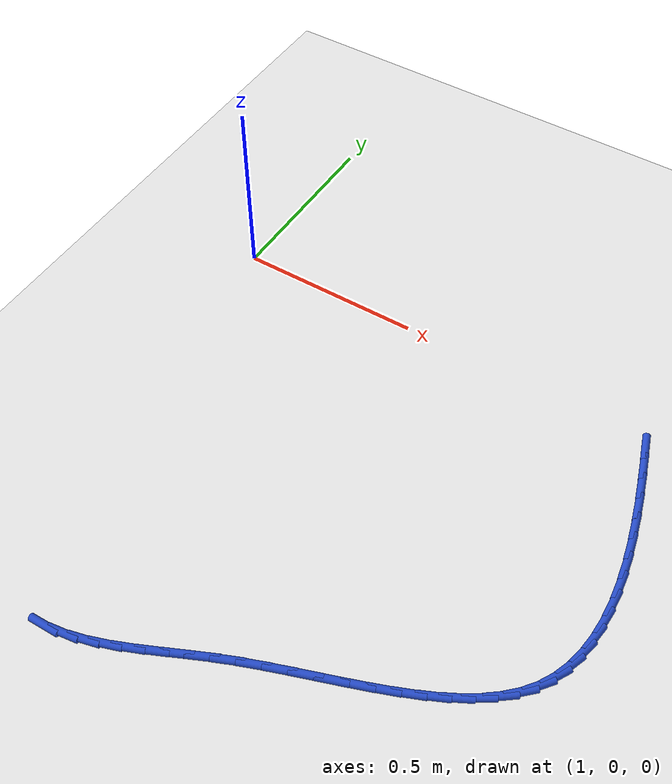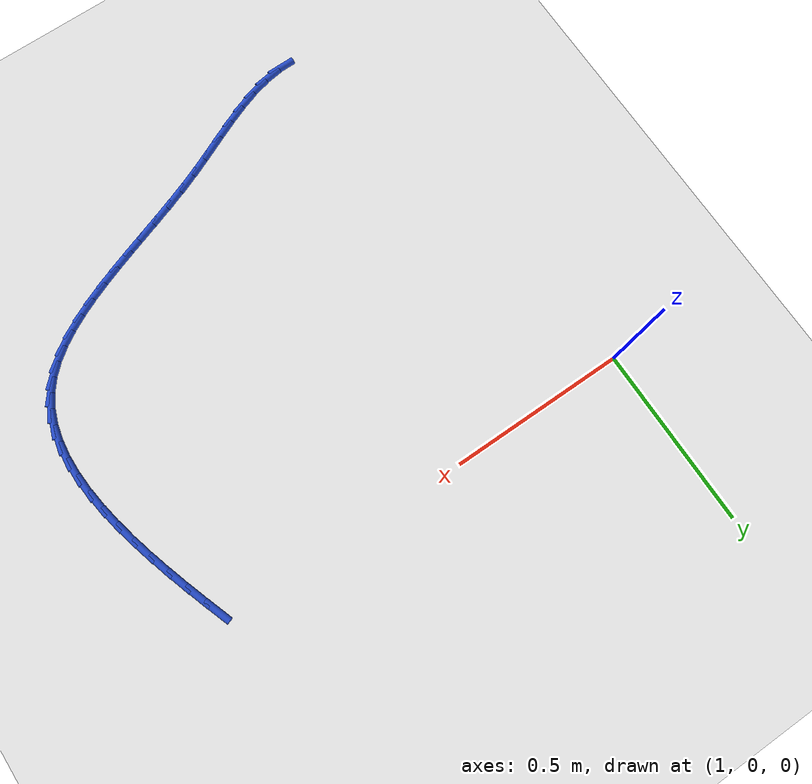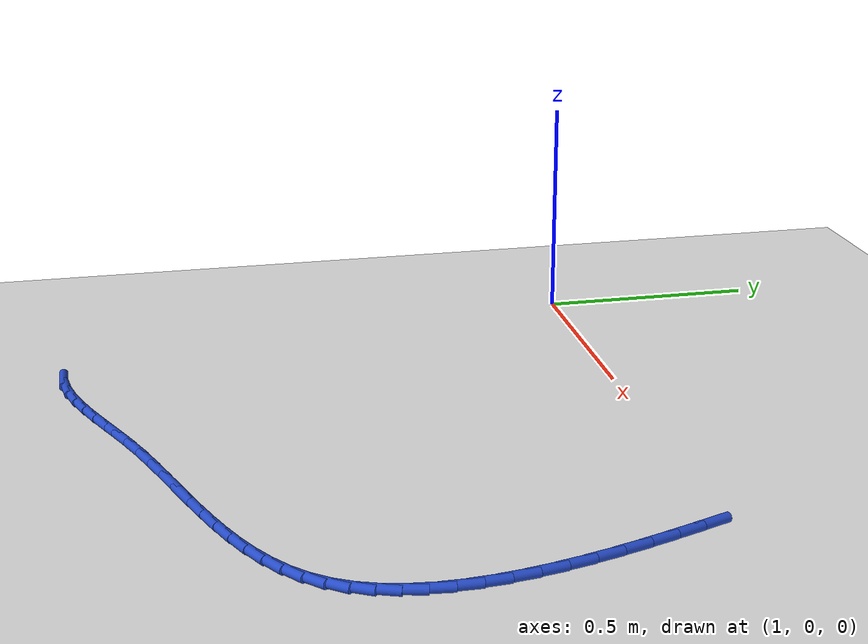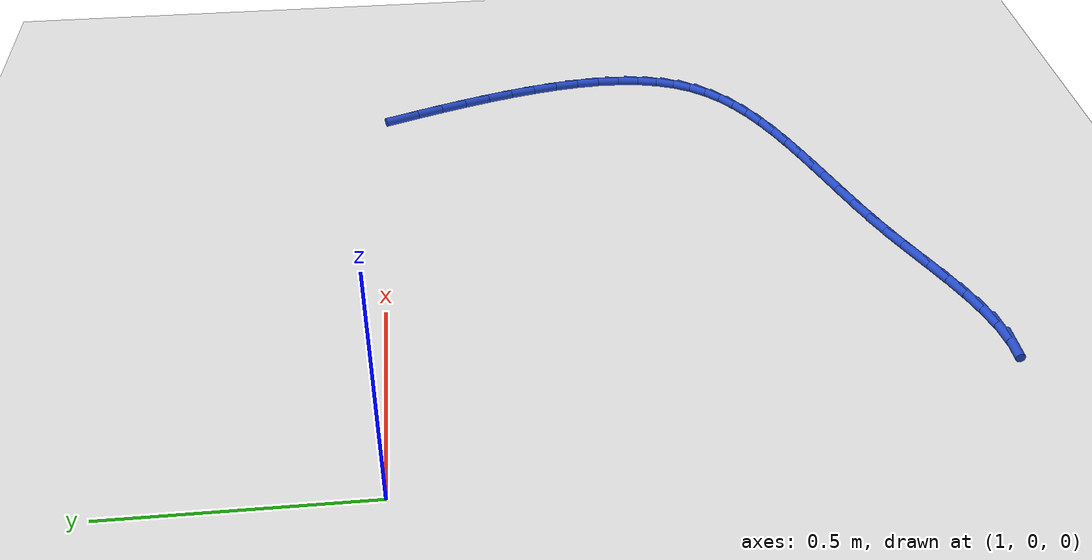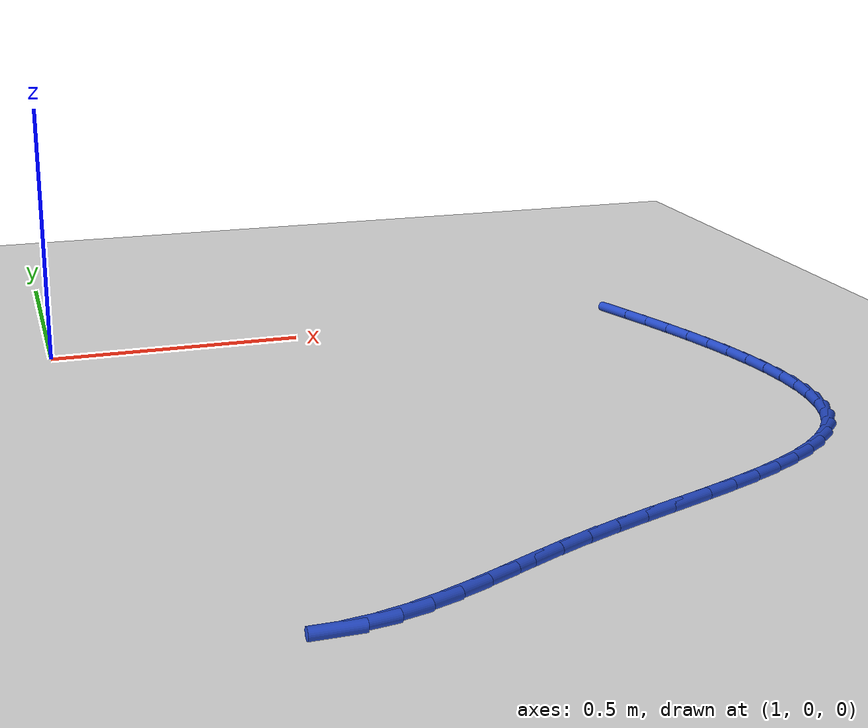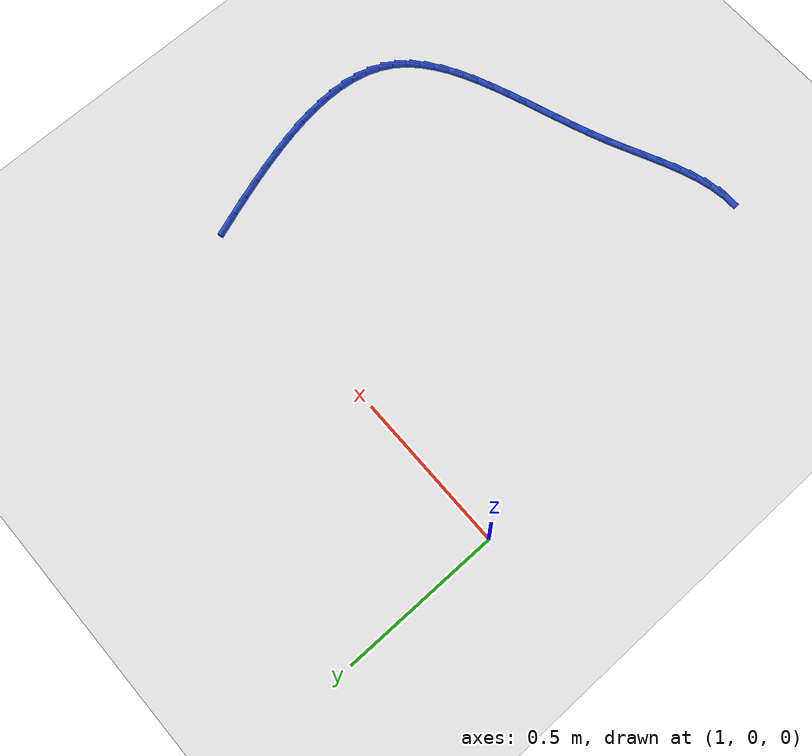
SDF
<sdf version="1.6">
 <world name="default">
  <model name="ground_plane">
   <static>1</static>
   <link name="link">
    <collision name="collision">
     <geometry><plane><normal>0 0 1</normal><size>100 100</size></plane></geometry>
     <surface><friction><ode><mu>100</mu><mu2>50</mu2></ode></friction></surface>
    </collision>
    <visual name="visual">
     <cast_shadows>0</cast_shadows>
     <geometry><plane><normal>0 0 1</normal><size>100 100</size></plane></geometry>
     <material>
      <script><uri>file://media/materials/scripts/gazebo.material</uri><name>Gazebo/WhiteGlow</name></script>
     </material>
    </visual>
   </link>
  </model>
  <model name="line">
   <link name="link_69">
    <pose>2.2056342795705226 -0.03901441204848701 0.01 0 1.57 -1.2252289311089013</pose>
    <collision name="collision">
     <geometry><cylinder><radius>0.01</radius><length>0.08</length></cylinder></geometry>
    </collision>
    <visual name="visual">
     <material>
      <script><name>Gazebo/Blue</name><uri>file://media/materials/scripts/gazebo.material</uri></script>
     </material>
     <geometry><cylinder><radius>0.01</radius><length>0.08</length></cylinder></geometry>
    </visual>
   </link>
   <link name="link_70">
    <pose>2.2262360307513274 -0.09623937714185546 0.01 0 1.57 -1.2387384780958342</pose>
    <collision name="collision">
     <geometry><cylinder><radius>0.01</radius><length>0.08</length></cylinder></geometry>
    </collision>
    <visual name="visual">
     <material>
      <script><name>Gazebo/Blue</name><uri>file://media/materials/scripts/gazebo.material</uri></script>
     </material>
     <geometry><cylinder><radius>0.01</radius><length>0.08</length></cylinder></geometry>
    </visual>
   </link>
   <link name="link_71">
    <pose>2.2460134147734023 -0.1535940920825142 0.01 0 1.57 -1.2570489514854983</pose>
    <collision name="collision">
     <geometry><cylinder><radius>0.01</radius><length>0.08</length></cylinder></geometry>
    </collision>
    <visual name="visual">
     <material>
      <script><name>Gazebo/Blue</name><uri>file://media/materials/scripts/gazebo.material</uri></script>
     </material>
     <geometry><cylinder><radius>0.01</radius><length>0.08</length></cylinder></geometry>
    </visual>
   </link>
   <link name="link_72">
    <pose>2.2645761572507275 -0.21080450859317787 0.01 0 1.57 -1.2806290459082628</pose>
    <collision name="collision">
     <geometry><cylinder><radius>0.01</radius><length>0.08</length></cylinder></geometry>
    </collision>
    <visual name="visual">
     <material>
      <script><name>Gazebo/Blue</name><uri>file://media/materials/scripts/gazebo.material</uri></script>
     </material>
     <geometry><cylinder><radius>0.01</radius><length>0.08</length></cylinder></geometry>
    </visual>
   </link>
   <link name="link_73">
    <pose>2.2815339837972854 -0.2675965783965617 0.01 0 1.57 -1.3101486203888764</pose>
    <collision name="collision">
     <geometry><cylinder><radius>0.01</radius><length>0.08</length></cylinder></geometry>
    </collision>
    <visual name="visual">
     <material>
      <script><name>Gazebo/Blue</name><uri>file://media/materials/scripts/gazebo.material</uri></script>
     </material>
     <geometry><cylinder><radius>0.01</radius><length>0.08</length></cylinder></geometry>
    </visual>
   </link>
   <link name="link_74">
    <pose>2.296496620027056 -0.3236962532153782 0.01 0 1.57 -1.3465111334952728</pose>
    <collision name="collision">
     <geometry><cylinder><radius>0.01</radius><length>0.08</length></cylinder></geometry>
    </collision>
    <visual name="visual">
     <material>
      <script><name>Gazebo/Blue</name><uri>file://media/materials/scripts/gazebo.material</uri></script>
     </material>
     <geometry><cylinder><radius>0.01</radius><length>0.08</length></cylinder></geometry>
    </visual>
   </link>
   <link name="link_75">
    <pose>2.309073791554022 -0.3788294847723427 0.01 0 1.57 -1.390893389303924</pose>
    <collision name="collision">
     <geometry><cylinder><radius>0.01</radius><length>0.08</length></cylinder></geometry>
    </collision>
    <visual name="visual">
     <material>
      <script><name>Gazebo/Blue</name><uri>file://media/materials/scripts/gazebo.material</uri></script>
     </material>
     <geometry><cylinder><radius>0.01</radius><length>0.08</length></cylinder></geometry>
    </visual>
   </link>
   <link name="link_76">
    <pose>2.3188752239921633 -0.43272222479016925 0.01 0 1.57 -1.4447847303375987</pose>
    <collision name="collision">
     <geometry><cylinder><radius>0.01</radius><length>0.08</length></cylinder></geometry>
    </collision>
    <visual name="visual">
     <material>
      <script><name>Gazebo/Blue</name><uri>file://media/materials/scripts/gazebo.material</uri></script>
     </material>
     <geometry><cylinder><radius>0.01</radius><length>0.08</length></cylinder></geometry>
    </visual>
   </link>
   <link name="link_77">
    <pose>2.3255106429554613 -0.48510042499157235 0.01 0 1.57 -1.5100064303308782</pose>
    <collision name="collision">
     <geometry><cylinder><radius>0.01</radius><length>0.08</length></cylinder></geometry>
    </collision>
    <visual name="visual">
     <material>
      <script><name>Gazebo/Blue</name><uri>file://media/materials/scripts/gazebo.material</uri></script>
     </material>
     <geometry><cylinder><radius>0.01</radius><length>0.08</length></cylinder></geometry>
    </visual>
   </link>
   <link name="link_78">
    <pose>2.328589774057898 -0.535690037099267 0.01 0 1.57 1.5529229942698222</pose>
    <collision name="collision">
     <geometry><cylinder><radius>0.01</radius><length>0.08</length></cylinder></geometry>
    </collision>
    <visual name="visual">
     <material>
      <script><name>Gazebo/Blue</name><uri>file://media/materials/scripts/gazebo.material</uri></script>
     </material>
     <geometry><cylinder><radius>0.01</radius><length>0.08</length></cylinder></geometry>
    </visual>
   </link>
   <link name="link_79">
    <pose>2.3277223429134533 -0.584217012835966 0.01 0 1.57 1.458599328019771</pose>
    <collision name="collision">
     <geometry><cylinder><radius>0.01</radius><length>0.08</length></cylinder></geometry>
    </collision>
    <visual name="visual">
     <material>
      <script><name>Gazebo/Blue</name><uri>file://media/materials/scripts/gazebo.material</uri></script>
     </material>
     <geometry><cylinder><radius>0.01</radius><length>0.08</length></cylinder></geometry>
    </visual>
   </link>
   <link name="link_80">
    <pose>2.3225180751361094 -0.6304073039243845 0.01 0 1.57 1.346732123095638</pose>
    <collision name="collision">
     <geometry><cylinder><radius>0.01</radius><length>0.08</length></cylinder></geometry>
    </collision>
    <visual name="visual">
     <material>
      <script><name>Gazebo/Blue</name><uri>file://media/materials/scripts/gazebo.material</uri></script>
     </material>
     <geometry><cylinder><radius>0.01</radius><length>0.08</length></cylinder></geometry>
    </visual>
   </link>
   <link name="link_81">
    <pose>2.3125866963398467 -0.6739868620872365 0.01 0 1.57 1.2165958881692642</pose>
    <collision name="collision">
     <geometry><cylinder><radius>0.01</radius><length>0.08</length></cylinder></geometry>
    </collision>
    <visual name="visual">
     <material>
      <script><name>Gazebo/Blue</name><uri>file://media/materials/scripts/gazebo.material</uri></script>
     </material>
     <geometry><cylinder><radius>0.01</radius><length>0.08</length></cylinder></geometry>
    </visual>
   </link>
   <link name="link_82">
    <pose>2.2975379321386478 -0.7146816390472374 0.01 0 1.57 1.069761949665185</pose>
    <collision name="collision">
     <geometry><cylinder><radius>0.01</radius><length>0.08</length></cylinder></geometry>
    </collision>
    <visual name="visual">
     <material>
      <script><name>Gazebo/Blue</name><uri>file://media/materials/scripts/gazebo.material</uri></script>
     </material>
     <geometry><cylinder><radius>0.01</radius><length>0.08</length></cylinder></geometry>
    </visual>
   </link>
   <link name="link_83">
    <pose>2.2769815081464917 -0.7522175865270997 0.01 0 1.57 0.9136133449423521</pose>
    <collision name="collision">
     <geometry><cylinder><radius>0.01</radius><length>0.08</length></cylinder></geometry>
    </collision>
    <visual name="visual">
     <material>
      <script><name>Gazebo/Blue</name><uri>file://media/materials/scripts/gazebo.material</uri></script>
     </material>
     <geometry><cylinder><radius>0.01</radius><length>0.08</length></cylinder></geometry>
    </visual>
   </link>
   <link name="link_84">
    <pose>2.2506192923932784 -0.7863831956056533 0.01 0 1.57 0.7719826336899985</pose>
    <collision name="collision">
     <geometry><cylinder><radius>0.01</radius><length>0.08</length></cylinder></geometry>
    </collision>
    <visual name="visual">
     <material>
      <script><name>Gazebo/Blue</name><uri>file://media/materials/scripts/gazebo.material</uri></script>
     </material>
     <geometry><cylinder><radius>0.01</radius><length>0.08</length></cylinder></geometry>
    </visual>
   </link>
   <link name="link_85">
    <pose>2.218772162771013 -0.8173870947959302 0.01 0 1.57 0.6548370400430105</pose>
    <collision name="collision">
     <geometry><cylinder><radius>0.01</radius><length>0.08</length></cylinder></geometry>
    </collision>
    <visual name="visual">
     <material>
      <script><name>Gazebo/Blue</name><uri>file://media/materials/scripts/gazebo.material</uri></script>
     </material>
     <geometry><cylinder><radius>0.01</radius><length>0.08</length></cylinder></geometry>
    </visual>
   </link>
   <link name="link_86">
    <pose>2.1820159156663648 -0.8456109321520637 0.01 0 1.57 0.5611412540439787</pose>
    <collision name="collision">
     <geometry><cylinder><radius>0.01</radius><length>0.08</length></cylinder></geometry>
    </collision>
    <visual name="visual">
     <material>
      <script><name>Gazebo/Blue</name><uri>file://media/materials/scripts/gazebo.material</uri></script>
     </material>
     <geometry><cylinder><radius>0.01</radius><length>0.08</length></cylinder></geometry>
    </visual>
   </link>
   <link name="link_87">
    <pose>2.140927139059118 -0.8714368930021816 0.01 0 1.57 0.48809937263132497</pose>
    <collision name="collision">
     <geometry><cylinder><radius>0.01</radius><length>0.08</length></cylinder></geometry>
    </collision>
    <visual name="visual">
     <material>
      <script><name>Gazebo/Blue</name><uri>file://media/materials/scripts/gazebo.material</uri></script>
     </material>
     <geometry><cylinder><radius>0.01</radius><length>0.08</length></cylinder></geometry>
    </visual>
   </link>
   <link name="link_88">
    <pose>2.096082420929059 -0.8952471626744094 0.01 0 1.57 0.43261044921629677</pose>
    <collision name="collision">
     <geometry><cylinder><radius>0.01</radius><length>0.08</length></cylinder></geometry>
    </collision>
    <visual name="visual">
     <material>
      <script><name>Gazebo/Blue</name><uri>file://media/materials/scripts/gazebo.material</uri></script>
     </material>
     <geometry><cylinder><radius>0.01</radius><length>0.08</length></cylinder></geometry>
    </visual>
   </link>
   <link name="link_89">
    <pose>2.0480583492559723 -0.9174239264968744 0.01 0 1.57 0.3919421929548874</pose>
    <collision name="collision">
     <geometry><cylinder><radius>0.01</radius><length>0.08</length></cylinder></geometry>
    </collision>
    <visual name="visual">
     <material>
      <script><name>Gazebo/Blue</name><uri>file://media/materials/scripts/gazebo.material</uri></script>
     </material>
     <geometry><cylinder><radius>0.01</radius><length>0.08</length></cylinder></geometry>
    </visual>
   </link>
   <link name="link_90">
    <pose>1.9974315120196426 -0.9383493697977039 0.01 0 1.57 0.36394606320995</pose>
    <collision name="collision">
     <geometry><cylinder><radius>0.01</radius><length>0.08</length></cylinder></geometry>
    </collision>
    <visual name="visual">
     <material>
      <script><name>Gazebo/Blue</name><uri>file://media/materials/scripts/gazebo.material</uri></script>
     </material>
     <geometry><cylinder><radius>0.01</radius><length>0.08</length></cylinder></geometry>
    </visual>
   </link>
   <link name="link_91">
    <pose>1.9447784971998547 -0.9584056779050248 0.01 0 1.57 0.3470670155249454</pose>
    <collision name="collision">
     <geometry><cylinder><radius>0.01</radius><length>0.08</length></cylinder></geometry>
    </collision>
    <visual name="visual">
     <material>
      <script><name>Gazebo/Blue</name><uri>file://media/materials/scripts/gazebo.material</uri></script>
     </material>
     <geometry><cylinder><radius>0.01</radius><length>0.08</length></cylinder></geometry>
    </visual>
   </link>
   <link name="link_92">
    <pose>1.890675892776394 -0.9779750361469635 0.01 0 1.57 0.34028603590012435</pose>
    <collision name="collision">
     <geometry><cylinder><radius>0.01</radius><length>0.08</length></cylinder></geometry>
    </collision>
    <visual name="visual">
     <material>
      <script><name>Gazebo/Blue</name><uri>file://media/materials/scripts/gazebo.material</uri></script>
     </material>
     <geometry><cylinder><radius>0.01</radius><length>0.08</length></cylinder></geometry>
    </visual>
   </link>
   <link name="link_93">
    <pose>1.8357002867290464 -0.9974396298516471 0.01 0 1.57 0.34305615118230526</pose>
    <collision name="collision">
     <geometry><cylinder><radius>0.01</radius><length>0.08</length></cylinder></geometry>
    </collision>
    <visual name="visual">
     <material>
      <script><name>Gazebo/Blue</name><uri>file://media/materials/scripts/gazebo.material</uri></script>
     </material>
     <geometry><cylinder><radius>0.01</radius><length>0.08</length></cylinder></geometry>
    </visual>
   </link>
   <link name="link_94">
    <pose>1.7804282670375948 -1.0171816443472024 0.01 0 1.57 0.3552535588782227</pose>
    <collision name="collision">
     <geometry><cylinder><radius>0.01</radius><length>0.08</length></cylinder></geometry>
    </collision>
    <visual name="visual">
     <material>
      <script><name>Gazebo/Blue</name><uri>file://media/materials/scripts/gazebo.material</uri></script>
     </material>
     <geometry><cylinder><radius>0.01</radius><length>0.08</length></cylinder></geometry>
    </visual>
   </link>
   <link name="link_95">
    <pose>1.7254364216818256 -1.037583264961757 0.01 0 1.57 0.37714786744316153</pose>
    <collision name="collision">
     <geometry><cylinder><radius>0.01</radius><length>0.08</length></cylinder></geometry>
    </collision>
    <visual name="visual">
     <material>
      <script><name>Gazebo/Blue</name><uri>file://media/materials/scripts/gazebo.material</uri></script>
     </material>
     <geometry><cylinder><radius>0.01</radius><length>0.08</length></cylinder></geometry>
    </visual>
   </link>
   <link name="link_96">
    <pose>1.671301338641524 -1.0590266770234364 0.01 0 1.57 0.40777100751787526</pose>
    <collision name="collision">
     <geometry><cylinder><radius>0.01</radius><length>0.08</length></cylinder></geometry>
    </collision>
    <visual name="visual">
     <material>
      <script><name>Gazebo/Blue</name><uri>file://media/materials/scripts/gazebo.material</uri></script>
     </material>
     <geometry><cylinder><radius>0.01</radius><length>0.08</length></cylinder></geometry>
    </visual>
   </link>
   <link name="link_97">
    <pose>1.6185515675020785 -1.0818137186705934 0.01 0 1.57 0.4309037463319172</pose>
    <collision name="collision">
     <geometry><cylinder><radius>0.01</radius><length>0.08</length></cylinder></geometry>
    </collision>
    <visual name="visual">
     <material>
      <script><name>Gazebo/Blue</name><uri>file://media/materials/scripts/gazebo.material</uri></script>
     </material>
     <geometry><cylinder><radius>0.01</radius><length>0.08</length></cylinder></geometry>
    </visual>
   </link>
   <link name="link_98">
    <pose>1.5672173814972936 -1.105412829983961 0.01 0 1.57 0.43609145665310667</pose>
    <collision name="collision">
     <geometry><cylinder><radius>0.01</radius><length>0.08</length></cylinder></geometry>
    </collision>
    <visual name="visual">
     <material>
      <script><name>Gazebo/Blue</name><uri>file://media/materials/scripts/gazebo.material</uri></script>
     </material>
     <geometry><cylinder><radius>0.01</radius><length>0.08</length></cylinder></geometry>
    </visual>
   </link>
   <link name="link_99">
    <pose>1.517034026343639 -1.1287989992496783 0.01 0 1.57 0.4221158482399533</pose>
    <collision name="collision">
     <geometry><cylinder><radius>0.01</radius><length>0.08</length></cylinder></geometry>
    </collision>
    <visual name="visual">
     <material>
      <script><name>Gazebo/Blue</name><uri>file://media/materials/scripts/gazebo.material</uri></script>
     </material>
     <geometry><cylinder><radius>0.01</radius><length>0.08</length></cylinder></geometry>
    </visual>
   </link>
   <link name="link_100">
    <pose>1.4677328928489128 -1.1509407671803908 0.01 0 1.57 0.3874084763949912</pose>
    <collision name="collision">
     <geometry><cylinder><radius>0.01</radius><length>0.08</length></cylinder></geometry>
    </collision>
    <visual name="visual">
     <material>
      <script><name>Gazebo/Blue</name><uri>file://media/materials/scripts/gazebo.material</uri></script>
     </material>
     <geometry><cylinder><radius>0.01</radius><length>0.08</length></cylinder></geometry>
    </visual>
   </link>
   <link name="link_101">
    <pose>1.4190453718209164 -1.1708066744887429 0.01 0 1.57 0.3300013498117237</pose>
    <collision name="collision">
     <geometry><cylinder><radius>0.01</radius><length>0.08</length></cylinder></geometry>
    </collision>
    <visual name="visual">
     <material>
      <script><name>Gazebo/Blue</name><uri>file://media/materials/scripts/gazebo.material</uri></script>
     </material>
     <geometry><cylinder><radius>0.01</radius><length>0.08</length></cylinder></geometry>
    </visual>
   </link>
   <link name="link_102">
    <pose>1.3707028540674482 -1.1873652618873802 0.01 0 1.57 0.2479652885217067</pose>
    <collision name="collision">
     <geometry><cylinder><radius>0.01</radius><length>0.08</length></cylinder></geometry>
    </collision>
    <visual name="visual">
     <material>
      <script><name>Gazebo/Blue</name><uri>file://media/materials/scripts/gazebo.material</uri></script>
     </material>
     <geometry><cylinder><radius>0.01</radius><length>0.08</length></cylinder></geometry>
    </visual>
   </link>
   <link name="link_103">
    <pose>1.3224367303963074 -1.1995850700889472 0.01 0 1.57 0.14041941075325523</pose>
    <collision name="collision">
     <geometry><cylinder><radius>0.01</radius><length>0.08</length></cylinder></geometry>
    </collision>
    <visual name="visual">
     <material>
      <script><name>Gazebo/Blue</name><uri>file://media/materials/scripts/gazebo.material</uri></script>
     </material>
     <geometry><cylinder><radius>0.01</radius><length>0.08</length></cylinder></geometry>
    </visual>
   </link>
   <link name="link_104">
    <pose>1.2739783916152931 -1.20643463980609 0.01 0 1.57 0.01111282103685962</pose>
    <collision name="collision">
     <geometry><cylinder><radius>0.01</radius><length>0.08</length></cylinder></geometry>
    </collision>
    <visual name="visual">
     <material>
      <script><name>Gazebo/Blue</name><uri>file://media/materials/scripts/gazebo.material</uri></script>
     </material>
     <geometry><cylinder><radius>0.01</radius><length>0.08</length></cylinder></geometry>
    </visual>
   </link>
  </model>
 </world>
</sdf>
